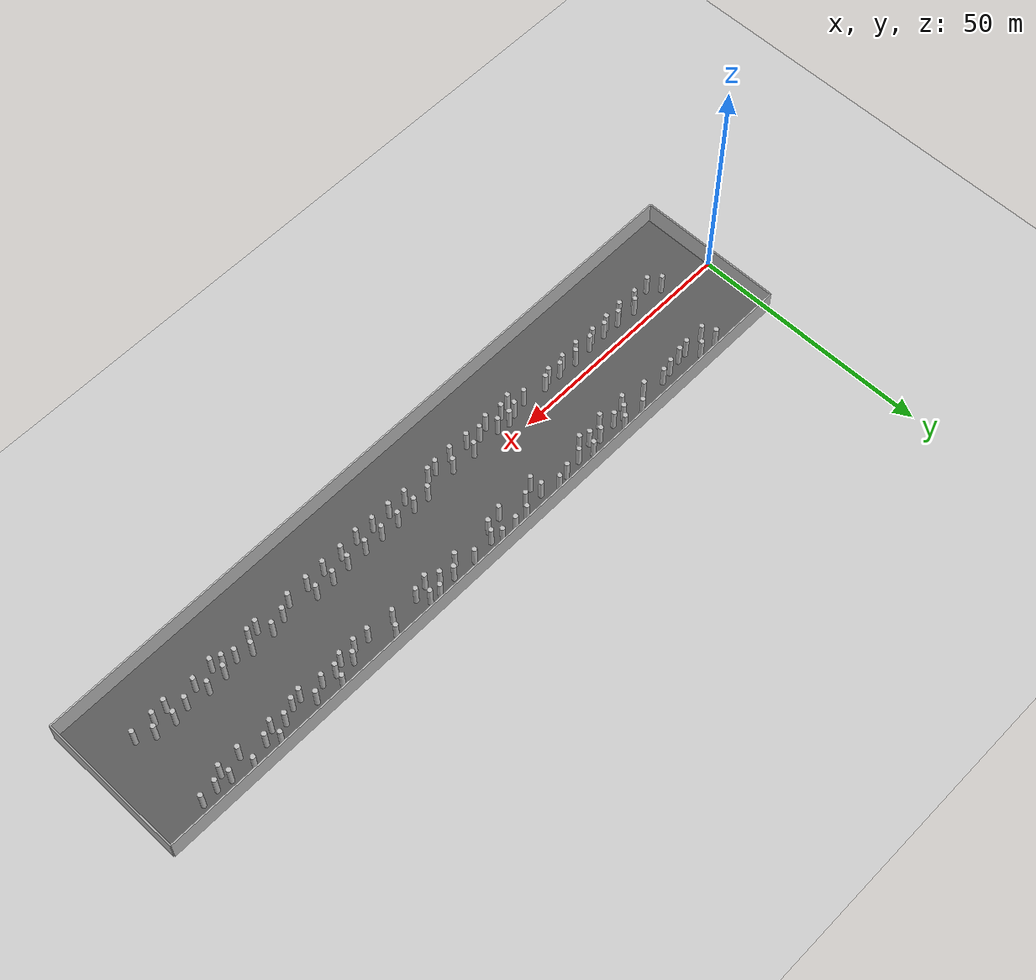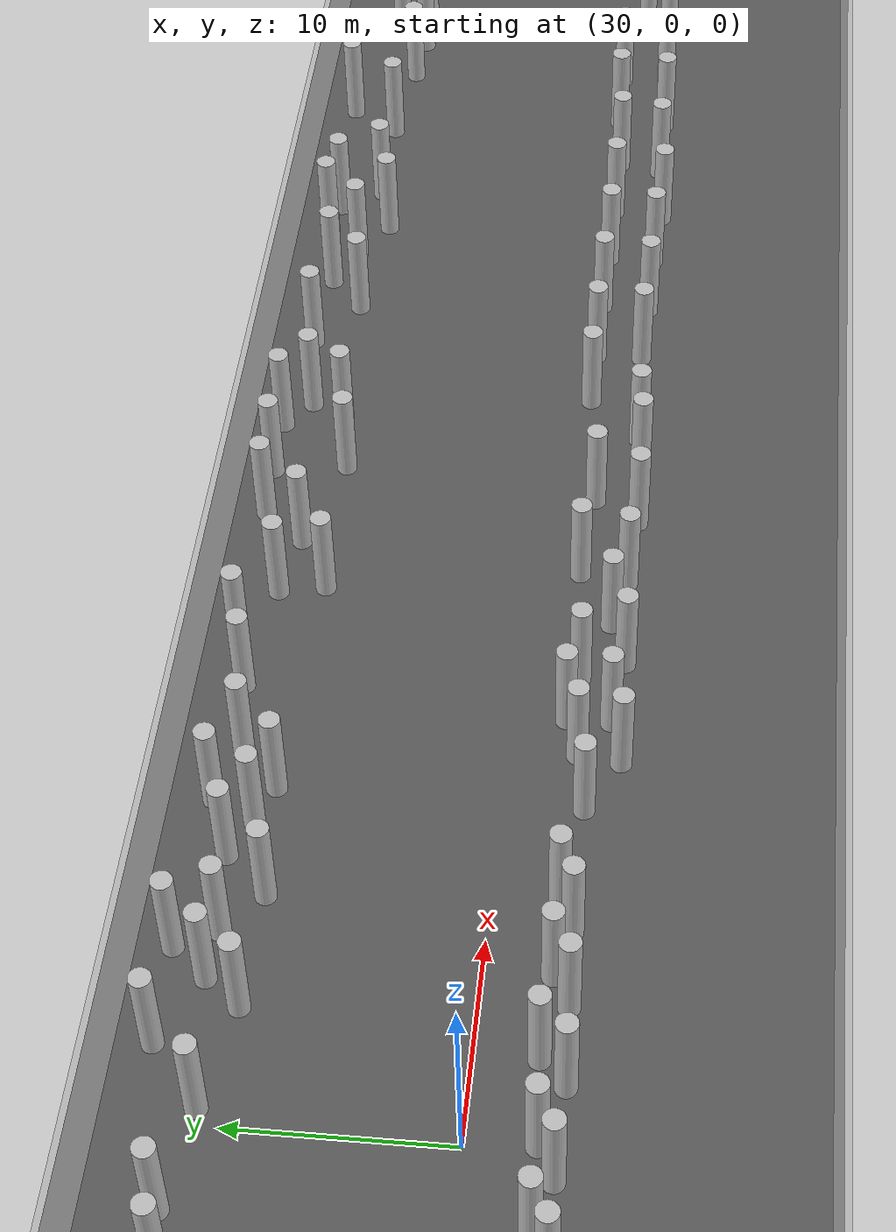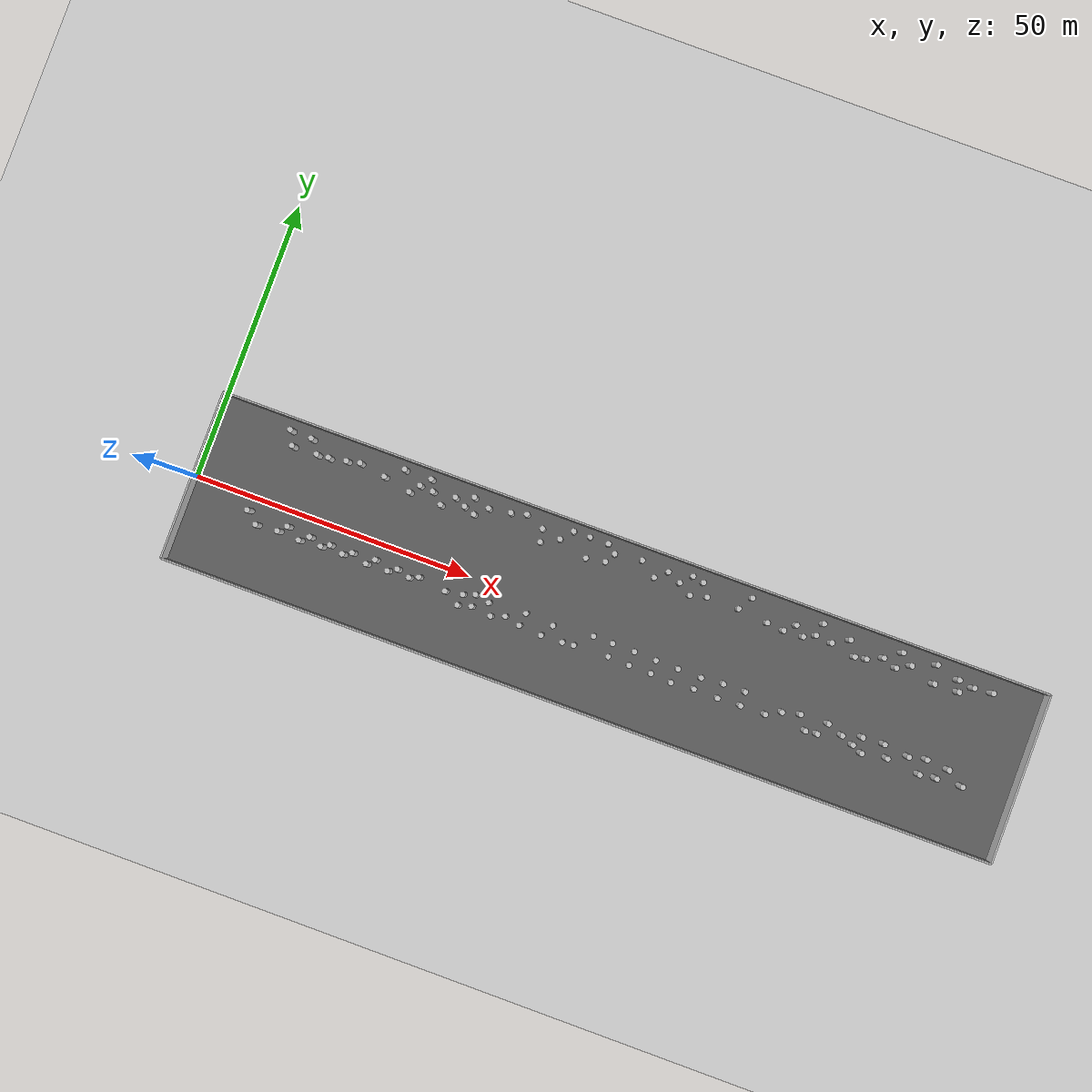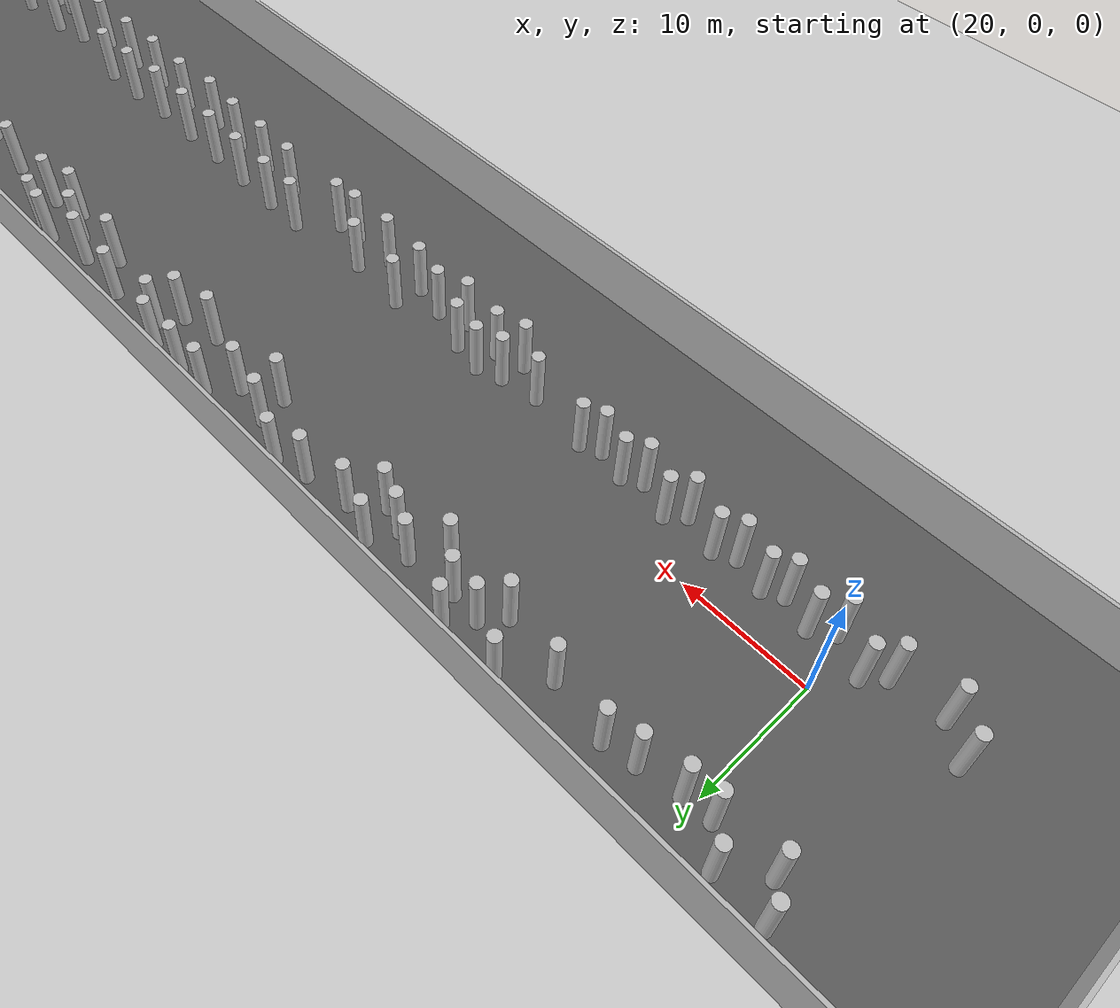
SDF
<?xml version="1.0" ?>
<sdf version="1.5">
  <world name="default">
    <plugin name="gazebo_ros_state" filename="libgazebo_ros_state.so">
      <ros>
        <namespace>/gazebo</namespace>
      </ros>
      <update_rate>20.0</update_rate>
    </plugin>

    <include><uri>model://sun</uri></include>
    <include><uri>model://ground_plane</uri></include>

    <model name="corridor_floor">
      <static>true</static>
      <pose>75 0 0.01 0 0 0</pose>
      <link name="link">
        <collision name="collision">
          <geometry><box><size>150 30 0.02</size></box></geometry>
        </collision>
        <visual name="visual">
          <geometry><box><size>150 30 0.02</size></box></geometry>
          <material>
            <ambient>0.25 0.25 0.25 1</ambient>
            <diffuse>0.35 0.35 0.35 1</diffuse>
          </material>
        </visual>
      </link>
    </model>

    <physics name="default_physics" default="0" type="ode">
      <gravity>0 0 -9.8066</gravity>
      <ode>
        <solver>
          <type>quick</type>
          <iters>10</iters>
          <sor>1.3</sor>
          <use_dynamic_moi_rescaling>0</use_dynamic_moi_rescaling>
        </solver>
        <constraints>
          <cfm>0</cfm>
          <erp>0.2</erp>
          <contact_max_correcting_vel>100</contact_max_correcting_vel>
          <contact_surface_layer>0.001</contact_surface_layer>
        </constraints>
      </ode>
      <max_step_size>0.004</max_step_size>
      <real_time_factor>1</real_time_factor>
      <real_time_update_rate>250</real_time_update_rate>
      <magnetic_field>6.0e-6 2.3e-5 -4.2e-5</magnetic_field>
    </physics>

    <model name="left_wall">
      <static>true</static>
      <pose>75 15.15 2.5 0 0 0</pose>
      <link name="link">
        <collision name="collision">
          <geometry><box><size>150 0.3 5</size></box></geometry>
        </collision>
        <visual name="visual">
          <geometry><box><size>150 0.3 5</size></box></geometry>
        </visual>
      </link>
    </model>

    <model name="right_wall">
      <static>true</static>
      <pose>75 -15.15 2.5 0 0 0</pose>
      <link name="link">
        <collision name="collision">
          <geometry><box><size>150 0.3 5</size></box></geometry>
        </collision>
        <visual name="visual">
          <geometry><box><size>150 0.3 5</size></box></geometry>
        </visual>
      </link>
    </model>

    <model name="start_wall">
      <static>true</static>
      <pose>0 0 2.5 0 0 0</pose>
      <link name="link">
        <collision name="collision">
          <geometry><box><size>0.3 30.3 5</size></box></geometry>
        </collision>
        <visual name="visual">
          <geometry><box><size>0.3 30.3 5</size></box></geometry>
        </visual>
      </link>
    </model>

    <model name="end_wall">
      <static>true</static>
      <pose>150 0 2.5 0 0 0</pose>
      <link name="link">
        <collision name="collision">
          <geometry><box><size>0.3 30.3 5</size></box></geometry>
        </collision>
        <visual name="visual">
          <geometry><box><size>0.3 30.3 5</size></box></geometry>
        </visual>
      </link>
    </model>

    <include><name>cylinder_000</name><uri>model://cylinder_r05_h5</uri><pose>16.970 -3.944 2.5 0 0 0</pose></include>
    <include><name>cylinder_001</name><uri>model://cylinder_r05_h5</uri><pose>18.256 -2.645 2.5 0 0 0</pose></include>
    <include><name>cylinder_002</name><uri>model://cylinder_r05_h5</uri><pose>20.934 -4.171 2.5 0 0 0</pose></include>
    <include><name>cylinder_003</name><uri>model://cylinder_r05_h5</uri><pose>22.486 -3.011 2.5 0 0 0</pose></include>
    <include><name>cylinder_004</name><uri>model://cylinder_r05_h5</uri><pose>24.816 -3.887 2.5 0 0 0</pose></include>
    <include><name>cylinder_005</name><uri>model://cylinder_r05_h5</uri><pose>26.217 -3.127 2.5 0 0 0</pose></include>
    <include><name>cylinder_006</name><uri>model://cylinder_r05_h5</uri><pose>28.731 -3.834 2.5 0 0 0</pose></include>
    <include><name>cylinder_007</name><uri>model://cylinder_r05_h5</uri><pose>30.266 -3.059 2.5 0 0 0</pose></include>
    <include><name>cylinder_008</name><uri>model://cylinder_r05_h5</uri><pose>33.089 -3.997 2.5 0 0 0</pose></include>
    <include><name>cylinder_009</name><uri>model://cylinder_r05_h5</uri><pose>34.309 -2.805 2.5 0 0 0</pose></include>
    <include><name>cylinder_010</name><uri>model://cylinder_r05_h5</uri><pose>36.919 -3.840 2.5 0 0 0</pose></include>
    <include><name>cylinder_011</name><uri>model://cylinder_r05_h5</uri><pose>38.406 -3.027 2.5 0 0 0</pose></include>
    <include><name>cylinder_012</name><uri>model://cylinder_r05_h5</uri><pose>40.763 -3.694 2.5 0 0 0</pose></include>
    <include><name>cylinder_013</name><uri>model://cylinder_r05_h5</uri><pose>42.332 -3.027 2.5 0 0 0</pose></include>
    <include><name>cylinder_014</name><uri>model://cylinder_r05_h5</uri><pose>58.440 -4.220 2.5 0 0 0</pose></include>
    <include><name>cylinder_015</name><uri>model://cylinder_r05_h5</uri><pose>71.108 -4.823 2.5 0 0 0</pose></include>
    <include><name>cylinder_016</name><uri>model://cylinder_r05_h5</uri><pose>66.611 -2.920 2.5 0 0 0</pose></include>
    <include><name>cylinder_017</name><uri>model://cylinder_r05_h5</uri><pose>47.329 -3.715 2.5 0 0 0</pose></include>
    <include><name>cylinder_018</name><uri>model://cylinder_r05_h5</uri><pose>69.075 -5.020 2.5 0 0 0</pose></include>
    <include><name>cylinder_019</name><uri>model://cylinder_r05_h5</uri><pose>50.118 -5.215 2.5 0 0 0</pose></include>
    <include><name>cylinder_020</name><uri>model://cylinder_r05_h5</uri><pose>50.394 -3.188 2.5 0 0 0</pose></include>
    <include><name>cylinder_021</name><uri>model://cylinder_r05_h5</uri><pose>73.745 -2.203 2.5 0 0 0</pose></include>
    <include><name>cylinder_022</name><uri>model://cylinder_r05_h5</uri><pose>52.426 -2.518 2.5 0 0 0</pose></include>
    <include><name>cylinder_023</name><uri>model://cylinder_r05_h5</uri><pose>61.583 -2.526 2.5 0 0 0</pose></include>
    <include><name>cylinder_024</name><uri>model://cylinder_r05_h5</uri><pose>54.986 -3.001 2.5 0 0 0</pose></include>
    <include><name>cylinder_025</name><uri>model://cylinder_r05_h5</uri><pose>56.042 -5.042 2.5 0 0 0</pose></include>
    <include><name>cylinder_026</name><uri>model://cylinder_r05_h5</uri><pose>52.453 -4.597 2.5 0 0 0</pose></include>
    <include><name>cylinder_027</name><uri>model://cylinder_r05_h5</uri><pose>65.267 -5.114 2.5 0 0 0</pose></include>
    <include><name>cylinder_028</name><uri>model://cylinder_r05_h5</uri><pose>61.223 -4.843 2.5 0 0 0</pose></include>
    <include><name>cylinder_029</name><uri>model://cylinder_r05_h5</uri><pose>77.240 -4.609 2.5 0 0 0</pose></include>
    <include><name>cylinder_030</name><uri>model://cylinder_r05_h5</uri><pose>77.209 -2.239 2.5 0 0 0</pose></include>
    <include><name>cylinder_031</name><uri>model://cylinder_r05_h5</uri><pose>81.044 -4.757 2.5 0 0 0</pose></include>
    <include><name>cylinder_032</name><uri>model://cylinder_r05_h5</uri><pose>81.179 -2.306 2.5 0 0 0</pose></include>
    <include><name>cylinder_033</name><uri>model://cylinder_r05_h5</uri><pose>85.034 -4.819 2.5 0 0 0</pose></include>
    <include><name>cylinder_034</name><uri>model://cylinder_r05_h5</uri><pose>85.096 -2.423 2.5 0 0 0</pose></include>
    <include><name>cylinder_035</name><uri>model://cylinder_r05_h5</uri><pose>88.768 -5.101 2.5 0 0 0</pose></include>
    <include><name>cylinder_036</name><uri>model://cylinder_r05_h5</uri><pose>89.092 -2.459 2.5 0 0 0</pose></include>
    <include><name>cylinder_037</name><uri>model://cylinder_r05_h5</uri><pose>92.827 -4.745 2.5 0 0 0</pose></include>
    <include><name>cylinder_038</name><uri>model://cylinder_r05_h5</uri><pose>93.320 -2.524 2.5 0 0 0</pose></include>
    <include><name>cylinder_039</name><uri>model://cylinder_r05_h5</uri><pose>97.103 -4.823 2.5 0 0 0</pose></include>
    <include><name>cylinder_040</name><uri>model://cylinder_r05_h5</uri><pose>97.222 -2.215 2.5 0 0 0</pose></include>
    <include><name>cylinder_041</name><uri>model://cylinder_r05_h5</uri><pose>101.176 -4.677 2.5 0 0 0</pose></include>
    <include><name>cylinder_042</name><uri>model://cylinder_r05_h5</uri><pose>101.171 -2.214 2.5 0 0 0</pose></include>
    <include><name>cylinder_043</name><uri>model://cylinder_r05_h5</uri><pose>119.131 -3.471 2.5 0 0 0</pose></include>
    <include><name>cylinder_044</name><uri>model://cylinder_r05_h5</uri><pose>133.639 -5.185 2.5 0 0 0</pose></include>
    <include><name>cylinder_045</name><uri>model://cylinder_r05_h5</uri><pose>115.060 -4.683 2.5 0 0 0</pose></include>
    <include><name>cylinder_046</name><uri>model://cylinder_r05_h5</uri><pose>127.616 -4.507 2.5 0 0 0</pose></include>
    <include><name>cylinder_047</name><uri>model://cylinder_r05_h5</uri><pose>112.994 -4.892 2.5 0 0 0</pose></include>
    <include><name>cylinder_048</name><uri>model://cylinder_r05_h5</uri><pose>123.258 -5.174 2.5 0 0 0</pose></include>
    <include><name>cylinder_049</name><uri>model://cylinder_r05_h5</uri><pose>108.188 -3.284 2.5 0 0 0</pose></include>
    <include><name>cylinder_050</name><uri>model://cylinder_r05_h5</uri><pose>130.921 -2.977 2.5 0 0 0</pose></include>
    <include><name>cylinder_051</name><uri>model://cylinder_r05_h5</uri><pose>126.369 -2.389 2.5 0 0 0</pose></include>
    <include><name>cylinder_052</name><uri>model://cylinder_r05_h5</uri><pose>121.357 -4.344 2.5 0 0 0</pose></include>
    <include><name>cylinder_053</name><uri>model://cylinder_r05_h5</uri><pose>134.033 -2.360 2.5 0 0 0</pose></include>
    <include><name>cylinder_054</name><uri>model://cylinder_r05_h5</uri><pose>116.283 -2.407 2.5 0 0 0</pose></include>
    <include><name>cylinder_055</name><uri>model://cylinder_r05_h5</uri><pose>111.285 -2.569 2.5 0 0 0</pose></include>
    <include><name>cylinder_056</name><uri>model://cylinder_r05_h5</uri><pose>105.627 -4.639 2.5 0 0 0</pose></include>
    <include><name>cylinder_057</name><uri>model://cylinder_r05_h5</uri><pose>122.501 -2.580 2.5 0 0 0</pose></include>
    <include><name>cylinder_058</name><uri>model://cylinder_r05_h5</uri><pose>13.079 -4.232 2.5 0 0 0</pose></include>
    <include><name>cylinder_059</name><uri>model://cylinder_r05_h5</uri><pose>10.932 -2.352 2.5 0 0 0</pose></include>
    <include><name>cylinder_060</name><uri>model://cylinder_r05_h5</uri><pose>138.108 -2.743 2.5 0 0 0</pose></include>
    <include><name>cylinder_061</name><uri>model://cylinder_r05_h5</uri><pose>141.161 -4.651 2.5 0 0 0</pose></include>
    <include><name>cylinder_062</name><uri>model://cylinder_r05_h5</uri><pose>136.600 -4.831 2.5 0 0 0</pose></include>
    <include><name>cylinder_063</name><uri>model://cylinder_r05_h5</uri><pose>130.299 13.375 2.5 0 0 0</pose></include>
    <include><name>cylinder_064</name><uri>model://cylinder_r05_h5</uri><pose>79.970 10.705 2.5 0 0 0</pose></include>
    <include><name>cylinder_065</name><uri>model://cylinder_r05_h5</uri><pose>33.717 13.365 2.5 0 0 0</pose></include>
    <include><name>cylinder_066</name><uri>model://cylinder_r05_h5</uri><pose>38.506 13.374 2.5 0 0 0</pose></include>
    <include><name>cylinder_067</name><uri>model://cylinder_r05_h5</uri><pose>26.171 11.768 2.5 0 0 0</pose></include>
    <include><name>cylinder_068</name><uri>model://cylinder_r05_h5</uri><pose>45.419 10.937 2.5 0 0 0</pose></include>
    <include><name>cylinder_069</name><uri>model://cylinder_r05_h5</uri><pose>112.149 10.663 2.5 0 0 0</pose></include>
    <include><name>cylinder_070</name><uri>model://cylinder_r05_h5</uri><pose>89.601 10.691 2.5 0 0 0</pose></include>
    <include><name>cylinder_071</name><uri>model://cylinder_r05_h5</uri><pose>137.458 11.767 2.5 0 0 0</pose></include>
    <include><name>cylinder_072</name><uri>model://cylinder_r05_h5</uri><pose>35.759 10.045 2.5 0 0 0</pose></include>
    <include><name>cylinder_073</name><uri>model://cylinder_r05_h5</uri><pose>18.649 10.616 2.5 0 0 0</pose></include>
    <include><name>cylinder_074</name><uri>model://cylinder_r05_h5</uri><pose>62.624 11.309 2.5 0 0 0</pose></include>
    <include><name>cylinder_075</name><uri>model://cylinder_r05_h5</uri><pose>86.700 9.958 2.5 0 0 0</pose></include>
    <include><name>cylinder_076</name><uri>model://cylinder_r05_h5</uri><pose>84.353 11.357 2.5 0 0 0</pose></include>
    <include><name>cylinder_077</name><uri>model://cylinder_r05_h5</uri><pose>46.501 12.970 2.5 0 0 0</pose></include>
    <include><name>cylinder_078</name><uri>model://cylinder_r05_h5</uri><pose>95.295 10.675 2.5 0 0 0</pose></include>
    <include><name>cylinder_079</name><uri>model://cylinder_r05_h5</uri><pose>124.097 13.267 2.5 0 0 0</pose></include>
    <include><name>cylinder_080</name><uri>model://cylinder_r05_h5</uri><pose>43.477 11.856 2.5 0 0 0</pose></include>
    <include><name>cylinder_081</name><uri>model://cylinder_r05_h5</uri><pose>103.729 9.824 2.5 0 0 0</pose></include>
    <include><name>cylinder_082</name><uri>model://cylinder_r05_h5</uri><pose>67.352 13.429 2.5 0 0 0</pose></include>
    <include><name>cylinder_083</name><uri>model://cylinder_r05_h5</uri><pose>23.815 11.326 2.5 0 0 0</pose></include>
    <include><name>cylinder_084</name><uri>model://cylinder_r05_h5</uri><pose>55.897 13.340 2.5 0 0 0</pose></include>
    <include><name>cylinder_085</name><uri>model://cylinder_r05_h5</uri><pose>53.234 12.653 2.5 0 0 0</pose></include>
    <include><name>cylinder_086</name><uri>model://cylinder_r05_h5</uri><pose>67.897 9.803 2.5 0 0 0</pose></include>
    <include><name>cylinder_087</name><uri>model://cylinder_r05_h5</uri><pose>114.935 12.236 2.5 0 0 0</pose></include>
    <include><name>cylinder_088</name><uri>model://cylinder_r05_h5</uri><pose>96.908 13.197 2.5 0 0 0</pose></include>
    <include><name>cylinder_089</name><uri>model://cylinder_r05_h5</uri><pose>70.690 13.422 2.5 0 0 0</pose></include>
    <include><name>cylinder_090</name><uri>model://cylinder_r05_h5</uri><pose>71.221 10.391 2.5 0 0 0</pose></include>
    <include><name>cylinder_091</name><uri>model://cylinder_r05_h5</uri><pose>134.609 12.203 2.5 0 0 0</pose></include>
    <include><name>cylinder_092</name><uri>model://cylinder_r05_h5</uri><pose>12.986 13.005 2.5 0 0 0</pose></include>
    <include><name>cylinder_093</name><uri>model://cylinder_r05_h5</uri><pose>100.698 10.099 2.5 0 0 0</pose></include>
    <include><name>cylinder_094</name><uri>model://cylinder_r05_h5</uri><pose>123.866 10.463 2.5 0 0 0</pose></include>
    <include><name>cylinder_095</name><uri>model://cylinder_r05_h5</uri><pose>81.950 12.440 2.5 0 0 0</pose></include>
    <include><name>cylinder_096</name><uri>model://cylinder_r05_h5</uri><pose>116.594 9.806 2.5 0 0 0</pose></include>
    <include><name>cylinder_097</name><uri>model://cylinder_r05_h5</uri><pose>126.201 11.700 2.5 0 0 0</pose></include>
    <include><name>cylinder_098</name><uri>model://cylinder_r05_h5</uri><pose>109.225 10.954 2.5 0 0 0</pose></include>
    <include><name>cylinder_099</name><uri>model://cylinder_r05_h5</uri><pose>20.767 10.787 2.5 0 0 0</pose></include>
    <include><name>cylinder_100</name><uri>model://cylinder_r05_h5</uri><pose>88.162 12.793 2.5 0 0 0</pose></include>
    <include><name>cylinder_101</name><uri>model://cylinder_r05_h5</uri><pose>39.467 11.473 2.5 0 0 0</pose></include>
    <include><name>cylinder_102</name><uri>model://cylinder_r05_h5</uri><pose>30.819 11.010 2.5 0 0 0</pose></include>
    <include><name>cylinder_103</name><uri>model://cylinder_r05_h5</uri><pose>49.436 12.070 2.5 0 0 0</pose></include>
    <include><name>cylinder_104</name><uri>model://cylinder_r05_h5</uri><pose>59.220 11.958 2.5 0 0 0</pose></include>
    <include><name>cylinder_105</name><uri>model://cylinder_r05_h5</uri><pose>37.050 11.695 2.5 0 0 0</pose></include>
    <include><name>cylinder_106</name><uri>model://cylinder_r05_h5</uri><pose>77.095 12.768 2.5 0 0 0</pose></include>
    <include><name>cylinder_107</name><uri>model://cylinder_r05_h5</uri><pose>121.311 11.313 2.5 0 0 0</pose></include>
    <include><name>cylinder_108</name><uri>model://cylinder_r05_h5</uri><pose>109.803 13.270 2.5 0 0 0</pose></include>
    <include><name>cylinder_109</name><uri>model://cylinder_r05_h5</uri><pose>14.230 10.538 2.5 0 0 0</pose></include>
    <include><name>cylinder_110</name><uri>model://cylinder_r05_h5</uri><pose>105.492 11.451 2.5 0 0 0</pose></include>
    <include><name>cylinder_111</name><uri>model://cylinder_r05_h5</uri><pose>64.405 13.371 2.5 0 0 0</pose></include>
    <include><name>cylinder_112</name><uri>model://cylinder_r05_h5</uri><pose>16.864 12.838 2.5 0 0 0</pose></include>
    <include><name>cylinder_113</name><uri>model://cylinder_r05_h5</uri><pose>140.798 12.070 2.5 0 0 0</pose></include>
    <include><name>cylinder_114</name><uri>model://cylinder_r05_h5</uri><pose>86.115 13.183 2.5 0 0 0</pose></include>
    <include><name>cylinder_115</name><uri>model://cylinder_r05_h5</uri><pose>107.237 9.991 2.5 0 0 0</pose></include>
    <include><name>cylinder_116</name><uri>model://cylinder_r05_h5</uri><pose>130.864 10.120 2.5 0 0 0</pose></include>
    <include><name>cylinder_117</name><uri>model://cylinder_r05_h5</uri><pose>41.500 9.807 2.5 0 0 0</pose></include>
    <include><name>cylinder_118</name><uri>model://cylinder_r05_h5</uri><pose>72.310 12.152 2.5 0 0 0</pose></include>
    <include><name>cylinder_119</name><uri>model://cylinder_r05_h5</uri><pose>118.608 10.124 2.5 0 0 0</pose></include>
    <include><name>cylinder_120</name><uri>model://cylinder_r05_h5</uri><pose>59.672 9.718 2.5 0 0 0</pose></include>
    <include><name>cylinder_121</name><uri>model://cylinder_r05_h5</uri><pose>135.227 10.259 2.5 0 0 0</pose></include>
    <include><name>cylinder_122</name><uri>model://cylinder_r05_h5</uri><pose>47.390 10.236 2.5 0 0 0</pose></include>

  </world>
</sdf>

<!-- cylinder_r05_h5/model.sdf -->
<sdf version="1.5">
  <model name="cylinder_r05_h5">
    <static>true</static>
    <link name="link">
      <collision name="collision">
        <geometry>
          <cylinder>
            <radius>0.5</radius>
            <length>5</length>
          </cylinder>
        </geometry>
      </collision>
      <visual name="visual">
        <geometry>
          <cylinder>
            <radius>0.5</radius>
            <length>5</length>
          </cylinder>
        </geometry>
        <material>
          <ambient>0.5 0.5 0.5 1</ambient>
          <diffuse>0.75 0.75 0.75 1</diffuse>
        </material>
      </visual>
    </link>
  </model>
</sdf>
